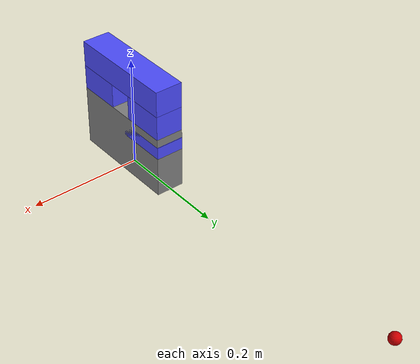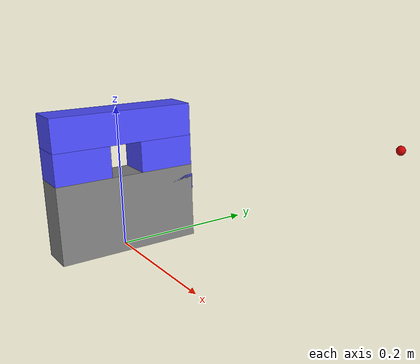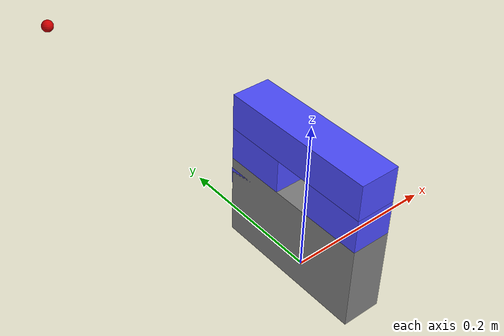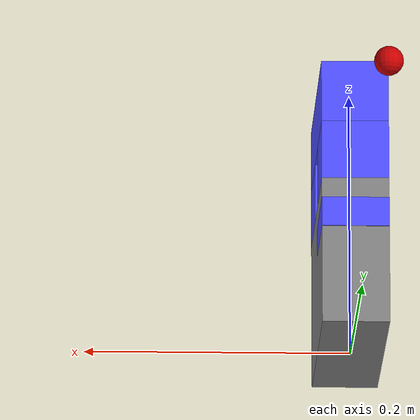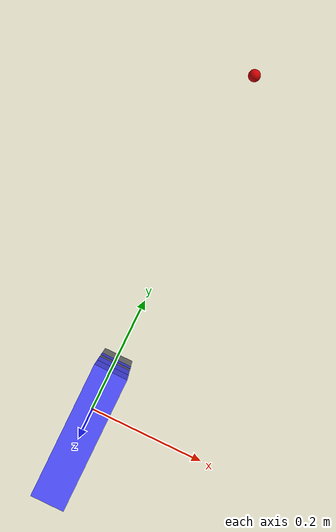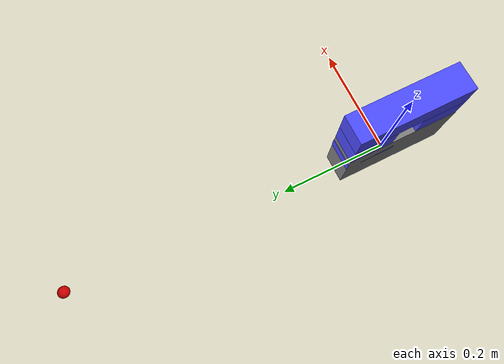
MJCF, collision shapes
<mujoco>
    <compiler angle="radian" inertiafromgeom="auto" inertiagrouprange="4 5"/>
    <asset>
        <texture name="T_plug_plast" type="cube" file="../textures/plaster1.png"/>

        <material name="plug_col" rgba="0.3 0.3 1.0 0.5" shininess="0" specular="0"/>
        <material name="plug_green" rgba="0 .5 0 1" shininess="1" reflectance=".7" specular=".5"/>
        <material name="plug_black" rgba=".25 .25 .25 1" shininess="1" reflectance=".7" specular=".5"/>
        <material name="plug_white" rgba=".6 .6 .6 1" shininess="1" reflectance=".7" specular=".5"/>
        <material name="plug_gold" rgba=".65 .51 .24 1" shininess="1" reflectance=".7" specular=".5"/>

        <material name="plug_plast" texture="T_plug_plast" shininess="1" reflectance=".7" specular=".5"/>

        <mesh file="../objects/meshes/plug/plug_head.stl" name="plug_head"/>
        <mesh file="../objects/meshes/plug/plug.stl" name="plug"/>
        <mesh file="../objects/meshes/plug/plug_wall.stl" name="plug_wall"/>
        <mesh file="../objects/meshes/plug/plug_plastic.stl" name="plug_plastic"/>
    </asset>
    <default>
        <default class="plug_base">
            <joint armature="0.001" damping="2" limited="true"/>
            <geom conaffinity="0" contype="0" group="1" type="mesh"/>
            <position ctrllimited="true" ctrlrange="0 1.57"/>
            <default class="plug_viz">
                <geom condim="4" type="mesh"/>
            </default>
            <default class="plug_col">
                <geom conaffinity="1" condim="3" contype="1" group="4" material="plug_col" solimp="0.99 0.99 0.01" solref="0.01 1"/>
            </default>
        </default>
    </default>

    <worldbody>
        <body name="box" pos="0 0 0">
            <geom pos="0 0 0.054" size="0.025 0.1 0.055" type="box"/>              <!--using plug col causes instability in the simulator -->
            <body childclass="plug_base" pos="0 0 .099" name="plug_wall">
                <geom material="plug_white" mesh="plug_wall"/>
                <geom material="plug_white" pos="0.025 0 0" mesh="plug_plastic"/>

                <geom class="plug_col" pos="0 0.061 0.032" size="0.025 0.039 0.022" type="box"/>
                <geom class="plug_col" pos="0 0 0.077" size="0.025 0.1 0.023" type="box"/>

                <geom class="plug_col" pos="0 0.056 -0.016" size="0.025 0.045 0.011" type="box"/>
                <geom class="plug_col" pos="0 -0.061 0.032" size="0.025 0.039 0.022" type="box"/>
                <body name="hole" pos="0.02 0 .03"></body>

            </body>
        </body>
        <site name="goal" pos="0 0.6 0.05" size="0.01" rgba="0.8 0 0 1"/>
    </worldbody>
</mujoco>
